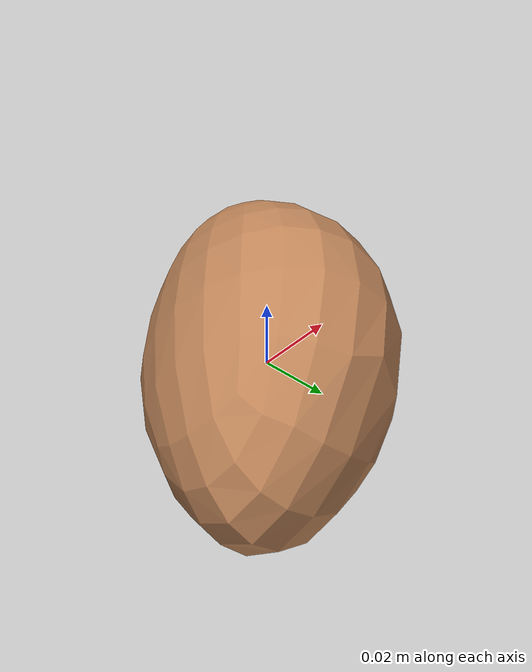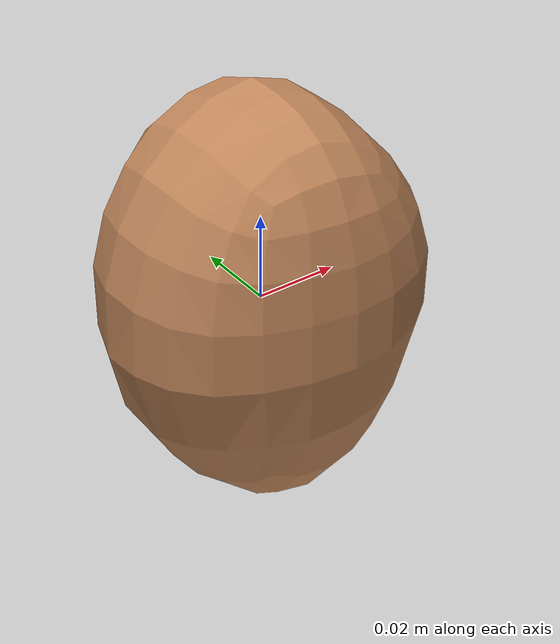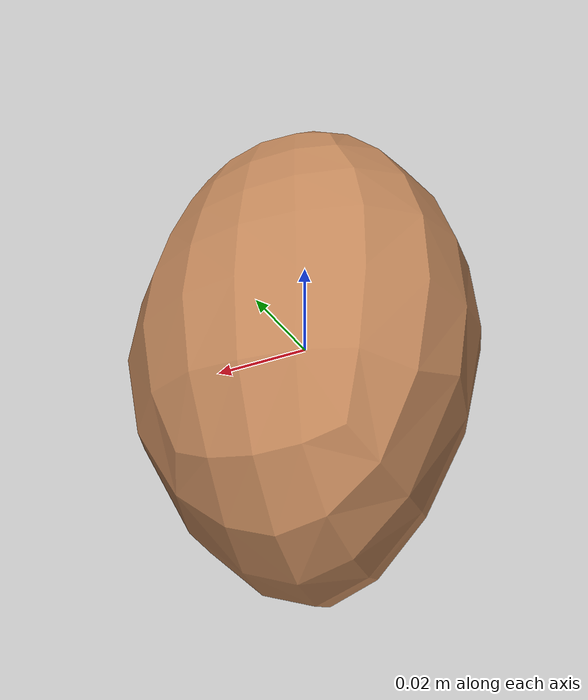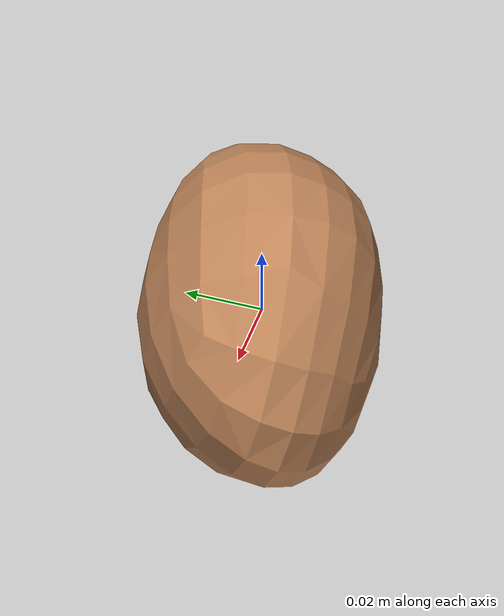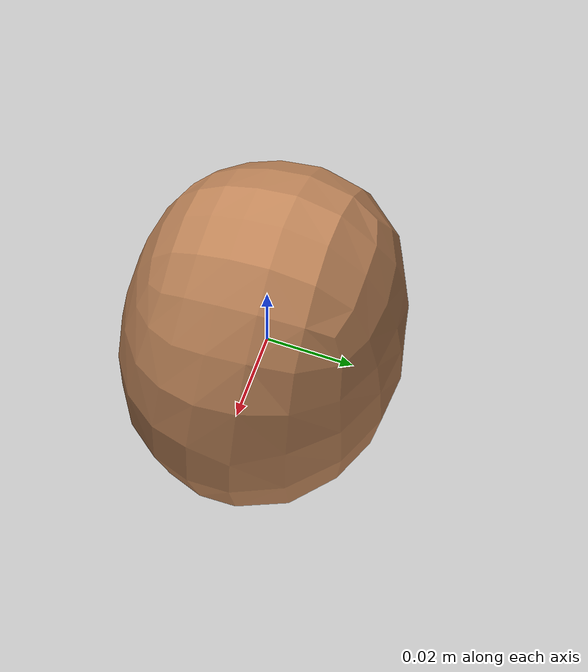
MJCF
<mujoco model="Potato_23">
  <compiler autolimits="true" boundmass="0.01" angle="radian"/>
  <default>
    <default class="/">
      <default class="__VISUAL_MJT__">
        <geom contype="0" conaffinity="0" group="0"/>
      </default>
      <default class="__STRUCTURAL_MJT__">
        <geom contype="8" conaffinity="15" group="4" friction="0.90000000000000002 0.90000000000000002 0.001" solref="0.025000000000000001 1" solimp="0.998 0.998 0.001"/>
      </default>
      <default class="__DYNAMIC_MJT__">
        <geom contype="1" conaffinity="15" group="4" friction="0.90000000000000002 0.90000000000000002 0.001" solref="0.025000000000000001 1" solimp="0.998 0.998 0.001"/>
      </default>
    </default>
  </default>
  <asset>
    <texture name="Potato3_Mat3" type="2d" file="Potato3_AlbedoTransparency.png"/>
    <material name="material_Potato3_Mat3" class="/" texture="Potato3_Mat3" specular="0.5" shininess="0.5" rgba="1 0.72555780000000003 0.51470590000000005 1"/>
    <mesh name="Potato_23_potato_c3" class="/" file="Potato_23_potato_c3/Potato_23_potato_c3.obj" scale="1 1 1"/>
  </asset>
  <worldbody>
    <body name="Potato_23">
      <joint name="Potato_23_free" class="/" type="free" pos="0 0 0" axis="0 0 1" stiffness="0" range="0 0" armature="0" damping="0.10000000000000001" frictionloss="0"/>
      <body name="Potato_23_potato_c3" pos="0.00073999999494757504 0.00038000000000000002 0.001409999963119626" quat="1 0 0 0">
        <geom name="Potato_23_potato_c3" class="__VISUAL_MJT__" type="mesh" material="material_Potato3_Mat3" shellinertia="true" mesh="Potato_23_potato_c3"/>
        <geom name="Potato_23_PrimitiveCollider_0" class="__DYNAMIC_MJT__" type="capsule" size="0.033921629190444946 0.015123631805181503" rgba="0 1 0 1" pos="0.00054112076759338379 -0.00038397253956645727 0.0014942002017050982" quat="1.4751396609986736e-06 0.99999999999891198 0 0"/>
      </body>
    </body>
  </worldbody>
</mujoco>
